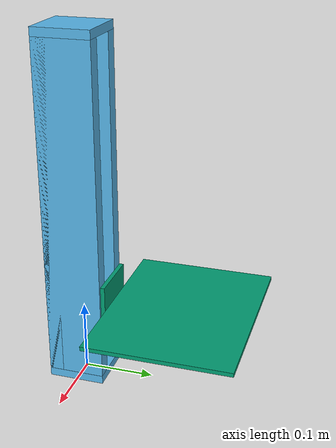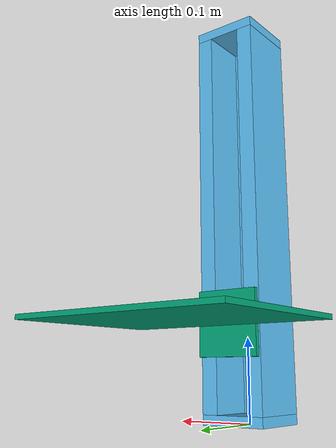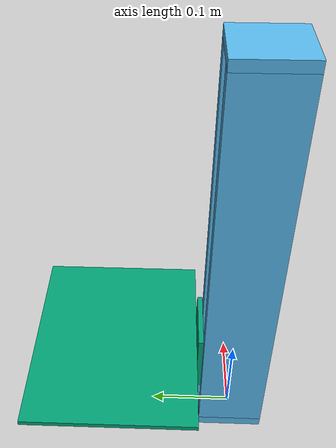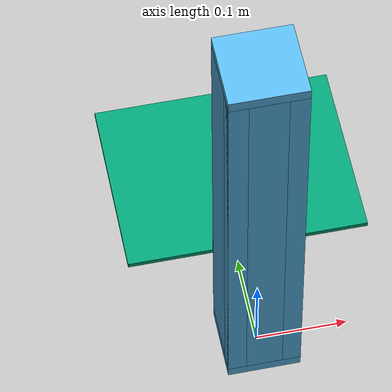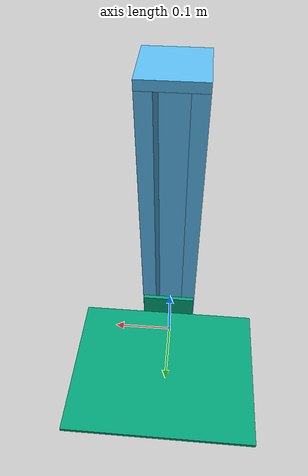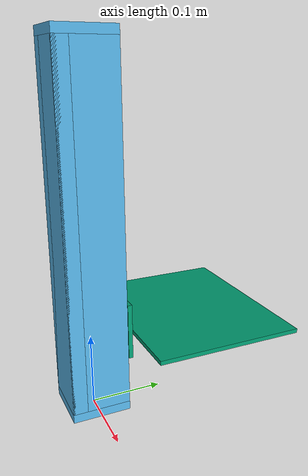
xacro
<?xml version="1.0"?>
<robot name="lift" xmlns:xacro="http://www.ros.org/wiki/xacro">

  <!-- ====== 参数（单位：m）====== -->
  <xacro:property name="H" value="0.50"/>      <!-- 外框总高度 50cm -->
  <xacro:property name="W" value="0.0795"/>    <!-- 外框宽 79.5mm -->
  <xacro:property name="D" value="0.0795"/>    <!-- 外框深 79.5mm -->
  <xacro:property name="eps" value="0.001"/>  <!-- 1mm 安全间隙 -->

  <xacro:property name="t_tb" value="0.012"/>  <!-- 顶/底板厚 12mm -->
  <xacro:property name="t_lr" value="0.020"/>  <!-- 左/右板厚 20mm -->
  <xacro:property name="t_back" value="0.020"/><!-- 背板厚 20mm -->

  <!-- 移动模块（竖直贴在开口面上） -->
  <xacro:property name="car_side" value="0.077"/>    <!-- 77mm (在 X-Z 平面) -->
  <xacro:property name="car_th"   value="0.0059"/>   <!-- 5.9mm (沿 Y 厚度) -->

  <!-- 矩形承载平台（水平放置，安装在移动模块中心） -->
  <xacro:property name="plat_length" value="0.26"/>   <!-- 平台长度 26cm (沿 X) -->
  <xacro:property name="plat_width"  value="0.20"/>   <!-- 平台宽度 20cm (沿 Y) -->
  <xacro:property name="plat_th"     value="0.0056"/> <!-- 平台厚度 5.6mm (沿 Z) -->

  <!-- ====== 软件零点定义 ====== -->
  <!-- 定义：lift_joint = 0 时，模块底面距离"底板上表面" = 65mm（光电传感器归零位置） -->
  <xacro:property name="zero_gap" value="0.065"/>

  <!-- 升降行程: 0 ~ 275mm -->
  <xacro:property name="joint_lower" value="0.0"/>
  <xacro:property name="joint_upper" value="0.275"/>

  <!-- lift_joint=0 时模块“中心”Z坐标：
       底板上表面高度 = t_tb
       模块底面高度 = t_tb + zero_gap
       模块中心高度 = t_tb + zero_gap + car_side/2
  -->
  <xacro:property name="z0" value="${t_tb + zero_gap + car_side/2.0}"/>

  <!-- 几何检查：模块顶面在最大行程时的高度（用于你自己判断是否会穿模） -->
  <!-- 模块顶面 = (底板上表面 t_tb) + (zero_gap + joint_upper) + car_side -->
  <xacro:property name="top_at_max" value="${t_tb + (zero_gap + joint_upper) + car_side}"/>
  <!-- 顶板下表面高度 = H - t_tb -->
  <xacro:property name="top_plate_inner" value="${H - t_tb}"/>

  <!-- ===================== 0) world -> lift_base_link (可选，但更稳) ===================== -->
  <link name="world"/>
  <joint name="world_to_lift" type="fixed">
    <parent link="world"/>
    <child link="lift_base_link"/>
    <origin xyz="0 0 0" rpy="0 0 0"/>
  </joint>

  <!-- ===================== 1) 固定框架：5个面（正面 +Y 开口） ===================== -->
  <link name="lift_base_link">

    <!-- 底板 -->
    <visual>
      <origin xyz="0 0 ${t_tb/2}" rpy="0 0 0"/>
      <geometry><box size="${W} ${D} ${t_tb}"/></geometry>
    </visual>

    <!-- 顶板 -->
    <visual>
      <origin xyz="0 0 ${H - t_tb/2}" rpy="0 0 0"/>
      <geometry><box size="${W} ${D} ${t_tb}"/></geometry>
    </visual>

    <!-- 左侧板（厚度沿 X） -->
    <visual>
      <origin xyz="${-W/2 + t_lr/2} 0 ${H/2}" rpy="0 0 0"/>
      <geometry><box size="${t_lr} ${D} ${H - 2*t_tb}"/></geometry>
    </visual>

    <!-- 右侧板 -->
    <visual>
      <origin xyz="${W/2 - t_lr/2} 0 ${H/2}" rpy="0 0 0"/>
      <geometry><box size="${t_lr} ${D} ${H - 2*t_tb}"/></geometry>
    </visual>

    <!-- 背板（厚度沿 Y，正面开口：+Y 方向不放板） -->
    <visual>
      <origin xyz="0 ${-D/2 + t_back/2} ${H/2}" rpy="0 0 0"/>
      <geometry><box size="${W} ${t_back} ${H - 2*t_tb}"/></geometry>
    </visual>

    <!-- 简化碰撞体（避免MoveIt警告；真实碰撞你后面再细化） -->
   <!-- ✅ 简化碰撞体 -->
<collision>
  <origin xyz="0 0 ${H/2}" rpy="0 0 0"/>
  <geometry>
    <box size="${W} ${D} ${H}"/>
  </geometry>
</collision>

  </link>

  <!-- ===================== 2) 移动模块（竖直贴在开口面 +Y） ===================== -->
  <link name="lift_top_link">
    <!-- 原移动模块 -->
    <visual>
      <origin xyz="0 0 0" rpy="0 0 0"/>
      <geometry><box size="${car_side} ${car_th} ${car_side}"/></geometry>
    </visual>

    <collision>
      <origin xyz="0 0 0" rpy="0 0 0"/>
      <geometry><box size="${car_side} ${car_th} ${car_side}"/></geometry>
    </collision>

    <!-- 矩形承载平台（水平放置，从移动模块表面向 +Y 延伸） -->
    <visual>
      <origin xyz="0 ${car_th/2 + plat_width/2} 0" rpy="0 0 0"/>
      <geometry><box size="${plat_length} ${plat_width} ${plat_th}"/></geometry>
    </visual>

    <collision>
      <origin xyz="0 ${car_th/2 + plat_width/2} 0" rpy="0 0 0"/>
      <geometry><box size="${plat_length} ${plat_width} ${plat_th}"/></geometry>
    </collision>
  </link>

  <!-- ===================== 3) 关节：沿 Z 上下移动 ===================== -->
  <joint name="lift_joint" type="prismatic">
    <parent link="lift_base_link"/>
    <child link="lift_top_link"/>

    <!-- ✅ 关键：joint=0 时模块底面距底板上表面 65mm -->
    <origin xyz="0 ${D/2 + car_th/2 + eps} ${z0}" rpy="0 0 0"/>

    <axis xyz="0 0 1"/>

    <!-- ✅ 关键：0~0.275m -->
    <limit lower="${joint_lower}" upper="${joint_upper}" effort="200" velocity="0.05"/>
  </joint>

</robot>
